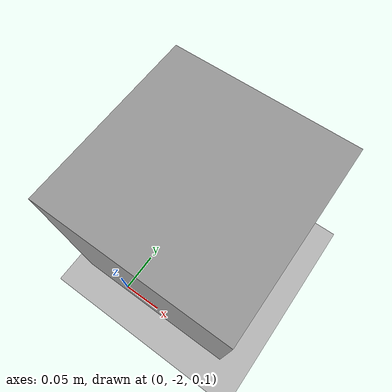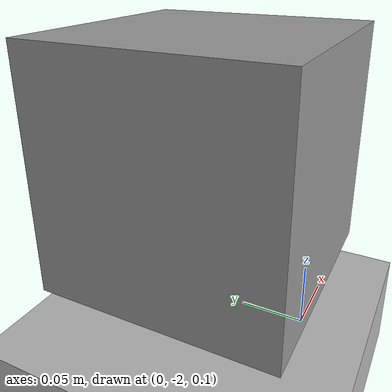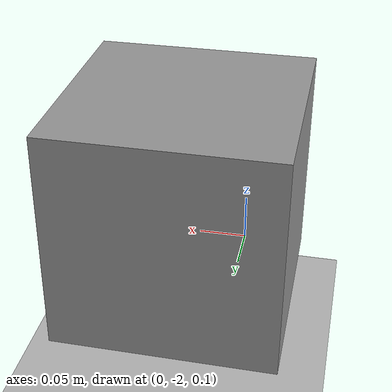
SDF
<sdf version="1.6">
 <world name="default">
  <plugin name="conveyor_controller" filename="libConveyorController.so"/>
  <light name="sun" type="directional">
   <pose>0 0 10 0 -0 0</pose>
   <diffuse>0.8 0.8 0.8 1</diffuse>
   <specular>0.1 0.1 0.1 1</specular>
   <attenuation>
    <range>1000</range>
    <constant>0.9</constant>
    <linear>0.01</linear>
    <quadratic>0.001</quadratic>
   </attenuation>
   <direction>-0.5 0.5 -1</direction>
  </light>
  <model name="ground_plane">
   <static>1</static>
   <link name="link">
    <collision name="collision">
     <geometry><plane><normal>0 0 1</normal><size>100 100</size></plane></geometry>
     <surface><friction><ode><mu>100</mu><mu2>50</mu2></ode></friction></surface>
    </collision>
    <visual name="visual">
     <cast_shadows>0</cast_shadows>
     <geometry><plane><normal>0 0 1</normal><size>100 100</size></plane></geometry>
     <material>
      <script><uri>file://media/materials/scripts/gazebo.material</uri><name>Gazebo/Grey</name></script>
     </material>
    </visual>
   </link>
  </model>
  <gravity>0 0 -9.8</gravity>
  <magnetic_field>6e-06 2.3e-05 -4.2e-05</magnetic_field>
  <atmosphere type="adiabatic"/>
  <physics name="default_physics" default="0" type="ode">
   <max_step_size>0.001</max_step_size>
   <real_time_factor>1</real_time_factor>
   <real_time_update_rate>1000</real_time_update_rate>
  </physics>
  <scene><ambient>0.4 0.4 0.4 1</ambient><background>0.7 0.7 0.7 1</background><shadows>1</shadows></scene>
  <spherical_coordinates>
   <surface_model>EARTH_WGS84</surface_model>
   <latitude_deg>0</latitude_deg>
   <longitude_deg>0</longitude_deg>
   <elevation>0</elevation>
   <heading_deg>0</heading_deg>
  </spherical_coordinates>
  <include><uri>model://conveyor_belt</uri></include>
  <model name="unit_box">
   <pose>0.046099 -1.89624 0.208219 1.7e-05 -1.9e-05 1e-05</pose>
   <link name="link">
    <inertial>
     <mass>1</mass>
     <inertia>
      <ixx>0.166667</ixx>
      <ixy>0</ixy>
      <ixz>0</ixz>
      <iyy>0.166667</iyy>
      <iyz>0</iyz>
      <izz>0.166667</izz>
     </inertia>
    </inertial>
    <collision name="collision">
     <geometry><box><size>0.216429 0.216429 0.216429</size></box></geometry>
    </collision>
    <visual name="visual">
     <geometry><box><size>0.216429 0.216429 0.216429</size></box></geometry>
     <material>
      <script><name>Gazebo/Grey</name><uri>file://media/materials/scripts/gazebo.material</uri></script>
     </material>
    </visual>
   </link>
  </model>
 </world>
</sdf>

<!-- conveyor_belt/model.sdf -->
<sdf version="1.6">
    <model name="conveyor_belt">
        <link name="belt">
            <sensor name='conveyor_belt_contact' type='contact'>
                <update_rate>10</update_rate>
                <contact>
                    <collision>belt_collision</collision>
                </contact>
                <plugin name="conveyor_belt_plugin" filename="libConveyorBeltPlugin.so">
                    <belt_speed>0.2</belt_speed>
                </plugin>
            </sensor>
            <inertial>
                <mass>10</mass>
                <inertia>
                    <ixx>20.841</ixx>
                    <ixy>0</ixy>
                    <ixz>0</ixz>
                    <iyy>0.8417</iyy>
                    <iyz>0</iyz>
                    <izz>21.66667</izz>
                </inertia>
            </inertial>
            <collision name="belt_collision">
            <geometry>
                <box>
                <size>1 5 0.1</size>
                </box>
            </geometry>
            <surface>
                <friction>
                    <ode>
                        <mu>0.1</mu>
                        <mu2>0.1</mu2>
                    </ode>
                </friction>
            </surface>
            </collision>
            <visual name="visual">
            <geometry>
                <box>
                <size>1 5 0.1</size>
                </box>
            </geometry>
            </visual>
        </link>
    </model>
</sdf>
